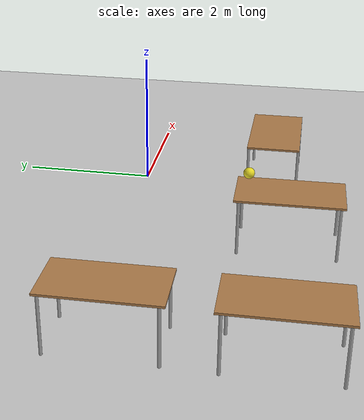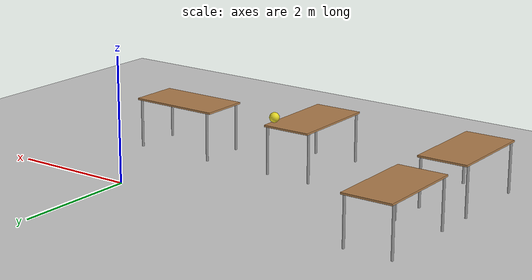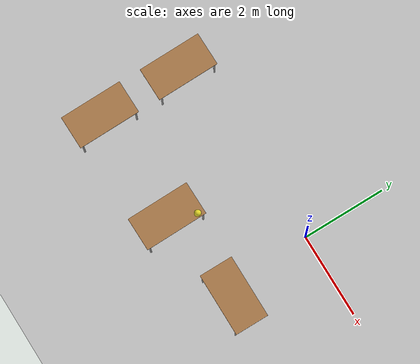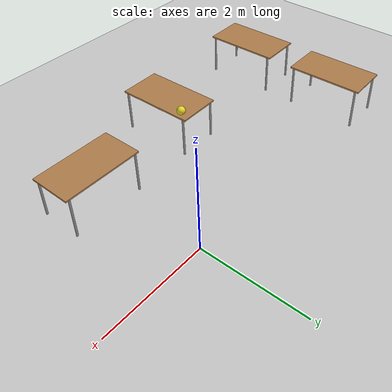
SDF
<sdf version="1.7">
 <world name="default">
  <model name="ground_plane">
   <static>1</static>
   <link name="link">
    <collision name="collision">
     <geometry><plane><normal>0 0 1</normal><size>100 100</size></plane></geometry>
     <surface>
      <contact><collide_bitmask>65535</collide_bitmask></contact>
      <friction><ode><mu>100</mu><mu2>50</mu2></ode></friction>
     </surface>
    </collision>
    <visual name="visual">
     <cast_shadows>0</cast_shadows>
     <geometry><plane><normal>0 0 1</normal><size>100 100</size></plane></geometry>
     <material>
      <script><uri>file://media/materials/scripts/gazebo.material</uri><name>Gazebo/Grey</name></script>
     </material>
    </visual>
   </link>
  </model>
  <model name="table_clone_clone_4">
   <link name="link">
    <inertial>
     <mass>1</mass>
     <pose>1.2 0 0.8 0 -0 0</pose>
     <inertia><ixx>1</ixx><ixy>0</ixy><ixz>0</ixz><iyy>1</iyy><iyz>0</iyz><izz>1</izz></inertia>
    </inertial>
    <visual name="back_right_leg">
     <pose>-0.68 -0.38 0.4 0 -0 0</pose>
     <geometry><cylinder><radius>0.02</radius><length>0.8</length></cylinder></geometry>
     <material>
      <script><uri>file://media/materials/scripts/gazebo.material</uri><name>Gazebo/Grey</name></script>
      <shader type="pixel"><normal_map>__default__</normal_map></shader>
      <ambient>0.3 0.3 0.3 1</ambient>
      <diffuse>0.7 0.7 0.7 1</diffuse>
      <specular>0.01 0.01 0.01 1</specular>
      <emissive>0 0 0 1</emissive>
     </material>
    </visual>
    <visual name="front_right_leg">
     <pose>0.68 -0.38 0.4 0 -0 0</pose>
     <geometry><cylinder><radius>0.02</radius><length>0.8</length></cylinder></geometry>
     <material>
      <script><uri>file://media/materials/scripts/gazebo.material</uri><name>Gazebo/Grey</name></script>
      <shader type="pixel"><normal_map>__default__</normal_map></shader>
      <ambient>0.3 0.3 0.3 1</ambient>
      <diffuse>0.7 0.7 0.7 1</diffuse>
      <specular>0.01 0.01 0.01 1</specular>
      <emissive>0 0 0 1</emissive>
     </material>
    </visual>
    <visual name="visual1">
     <pose>0 0 0.8 0 -0 0</pose>
     <geometry><box><size>1.5 0.8 0.03</size></box></geometry>
     <material>
      <script><uri>file://media/materials/scripts/gazebo.material</uri><name>Gazebo/Wood</name></script>
      <shader type="pixel"><normal_map>__default__</normal_map></shader>
      <ambient>1 1 1 1</ambient>
      <diffuse>1 1 1 1</diffuse>
      <specular>0.2 0.2 0.2 1</specular>
      <emissive>0 0 0 1</emissive>
     </material>
    </visual>
    <visual name="front_left_leg">
     <pose>0.68 0.38 0.4 0 -0 0</pose>
     <geometry><cylinder><radius>0.02</radius><length>0.8</length></cylinder></geometry>
     <material>
      <script><uri>file://media/materials/scripts/gazebo.material</uri><name>Gazebo/Grey</name></script>
      <shader type="pixel"><normal_map>__default__</normal_map></shader>
      <ambient>0.3 0.3 0.3 1</ambient>
      <diffuse>0.7 0.7 0.7 1</diffuse>
      <specular>0.01 0.01 0.01 1</specular>
      <emissive>0 0 0 1</emissive>
     </material>
    </visual>
    <visual name="back_left_leg">
     <pose>-0.68 0.38 0.4 0 -0 0</pose>
     <geometry><cylinder><radius>0.02</radius><length>0.8</length></cylinder></geometry>
     <material>
      <script><uri>file://media/materials/scripts/gazebo.material</uri><name>Gazebo/Grey</name></script>
      <shader type="pixel"><normal_map>__default__</normal_map></shader>
      <ambient>0.3 0.3 0.3 1</ambient>
      <diffuse>0.7 0.7 0.7 1</diffuse>
      <specular>0.01 0.01 0.01 1</specular>
      <emissive>0 0 0 1</emissive>
     </material>
    </visual>
    <collision name="back_right_leg">
     <pose>-0.68 -0.38 0.4 0 -0 0</pose>
     <geometry><cylinder><radius>0.02</radius><length>0.8</length></cylinder></geometry>
     <surface>
      <friction>
       <ode><mu>1</mu><mu2>1</mu2><fdir1>0 0 0</fdir1><slip1>0</slip1><slip2>0</slip2></ode>
       <torsional>
        <coefficient>1</coefficient>
        <patch_radius>0</patch_radius>
        <surface_radius>0</surface_radius>
        <use_patch_radius>1</use_patch_radius>
        <ode><slip>0</slip></ode>
       </torsional>
      </friction>
      <bounce><restitution_coefficient>0</restitution_coefficient><threshold>1e+06</threshold></bounce>
      <contact>
       <collide_without_contact>0</collide_without_contact>
       <collide_without_contact_bitmask>1</collide_without_contact_bitmask>
       <collide_bitmask>1</collide_bitmask>
       <ode>
        <soft_cfm>0</soft_cfm>
        <soft_erp>0.2</soft_erp>
        <kp>1e+13</kp>
        <kd>1</kd>
        <max_vel>0.01</max_vel>
        <min_depth>0</min_depth>
       </ode>
       <bullet>
        <split_impulse>1</split_impulse>
        <split_impulse_penetration_threshold>-0.01</split_impulse_penetration_threshold>
        <soft_cfm>0</soft_cfm>
        <soft_erp>0.2</soft_erp>
        <kp>1e+13</kp>
        <kd>1</kd>
       </bullet>
      </contact>
     </surface>
    </collision>
    <collision name="front_left_leg">
     <pose>0.68 0.38 0.4 0 -0 0</pose>
     <geometry><cylinder><radius>0.02</radius><length>0.8</length></cylinder></geometry>
     <surface>
      <friction>
       <ode><mu>1</mu><mu2>1</mu2><fdir1>0 0 0</fdir1><slip1>0</slip1><slip2>0</slip2></ode>
       <torsional>
        <coefficient>1</coefficient>
        <patch_radius>0</patch_radius>
        <surface_radius>0</surface_radius>
        <use_patch_radius>1</use_patch_radius>
        <ode><slip>0</slip></ode>
       </torsional>
      </friction>
      <bounce><restitution_coefficient>0</restitution_coefficient><threshold>1e+06</threshold></bounce>
      <contact>
       <collide_without_contact>0</collide_without_contact>
       <collide_without_contact_bitmask>1</collide_without_contact_bitmask>
       <collide_bitmask>1</collide_bitmask>
       <ode>
        <soft_cfm>0</soft_cfm>
        <soft_erp>0.2</soft_erp>
        <kp>1e+13</kp>
        <kd>1</kd>
        <max_vel>0.01</max_vel>
        <min_depth>0</min_depth>
       </ode>
       <bullet>
        <split_impulse>1</split_impulse>
        <split_impulse_penetration_threshold>-0.01</split_impulse_penetration_threshold>
        <soft_cfm>0</soft_cfm>
        <soft_erp>0.2</soft_erp>
        <kp>1e+13</kp>
        <kd>1</kd>
       </bullet>
      </contact>
     </surface>
    </collision>
    <collision name="back_left_leg">
     <pose>-0.68 0.38 0.4 0 -0 0</pose>
     <geometry><cylinder><radius>0.02</radius><length>0.8</length></cylinder></geometry>
     <surface>
      <friction>
       <ode><mu>1</mu><mu2>1</mu2><fdir1>0 0 0</fdir1><slip1>0</slip1><slip2>0</slip2></ode>
       <torsional>
        <coefficient>1</coefficient>
        <patch_radius>0</patch_radius>
        <surface_radius>0</surface_radius>
        <use_patch_radius>1</use_patch_radius>
        <ode><slip>0</slip></ode>
       </torsional>
      </friction>
      <bounce><restitution_coefficient>0</restitution_coefficient><threshold>1e+06</threshold></bounce>
      <contact>
       <collide_without_contact>0</collide_without_contact>
       <collide_without_contact_bitmask>1</collide_without_contact_bitmask>
       <collide_bitmask>1</collide_bitmask>
       <ode>
        <soft_cfm>0</soft_cfm>
        <soft_erp>0.2</soft_erp>
        <kp>1e+13</kp>
        <kd>1</kd>
        <max_vel>0.01</max_vel>
        <min_depth>0</min_depth>
       </ode>
       <bullet>
        <split_impulse>1</split_impulse>
        <split_impulse_penetration_threshold>-0.01</split_impulse_penetration_threshold>
        <soft_cfm>0</soft_cfm>
        <soft_erp>0.2</soft_erp>
        <kp>1e+13</kp>
        <kd>1</kd>
       </bullet>
      </contact>
     </surface>
    </collision>
    <collision name="surface">
     <pose>0 0 0.8 0 -0 0</pose>
     <geometry><box><size>1.5 0.8 0.03</size></box></geometry>
     <surface>
      <friction>
       <ode><mu>0.6</mu><mu2>0.6</mu2><fdir1>0 0 0</fdir1><slip1>0</slip1><slip2>0</slip2></ode>
       <torsional>
        <coefficient>1</coefficient>
        <patch_radius>0</patch_radius>
        <surface_radius>0</surface_radius>
        <use_patch_radius>1</use_patch_radius>
        <ode><slip>0</slip></ode>
       </torsional>
      </friction>
      <bounce><restitution_coefficient>0</restitution_coefficient><threshold>1e+06</threshold></bounce>
      <contact>
       <collide_without_contact>0</collide_without_contact>
       <collide_without_contact_bitmask>1</collide_without_contact_bitmask>
       <collide_bitmask>1</collide_bitmask>
       <ode>
        <soft_cfm>0</soft_cfm>
        <soft_erp>0.2</soft_erp>
        <kp>1e+13</kp>
        <kd>1</kd>
        <max_vel>0.01</max_vel>
        <min_depth>0</min_depth>
       </ode>
       <bullet>
        <split_impulse>1</split_impulse>
        <split_impulse_penetration_threshold>-0.01</split_impulse_penetration_threshold>
        <soft_cfm>0</soft_cfm>
        <soft_erp>0.2</soft_erp>
        <kp>1e+13</kp>
        <kd>1</kd>
       </bullet>
      </contact>
     </surface>
    </collision>
    <collision name="front_right_leg">
     <pose>0.68 -0.38 0.4 0 -0 0</pose>
     <geometry><cylinder><radius>0.02</radius><length>0.8</length></cylinder></geometry>
     <surface>
      <friction>
       <ode><mu>1</mu><mu2>1</mu2><fdir1>0 0 0</fdir1><slip1>0</slip1><slip2>0</slip2></ode>
       <torsional>
        <coefficient>1</coefficient>
        <patch_radius>0</patch_radius>
        <surface_radius>0</surface_radius>
        <use_patch_radius>1</use_patch_radius>
        <ode><slip>0</slip></ode>
       </torsional>
      </friction>
      <bounce><restitution_coefficient>0</restitution_coefficient><threshold>1e+06</threshold></bounce>
      <contact>
       <collide_without_contact>0</collide_without_contact>
       <collide_without_contact_bitmask>1</collide_without_contact_bitmask>
       <collide_bitmask>1</collide_bitmask>
       <ode>
        <soft_cfm>0</soft_cfm>
        <soft_erp>0.2</soft_erp>
        <kp>1e+13</kp>
        <kd>1</kd>
        <max_vel>0.01</max_vel>
        <min_depth>0</min_depth>
       </ode>
       <bullet>
        <split_impulse>1</split_impulse>
        <split_impulse_penetration_threshold>-0.01</split_impulse_penetration_threshold>
        <soft_cfm>0</soft_cfm>
        <soft_erp>0.2</soft_erp>
        <kp>1e+13</kp>
        <kd>1</kd>
       </bullet>
      </contact>
     </surface>
    </collision>
   </link>
   <static>1</static>
   <pose>-1.89491 -2.38472 0 0 0 -1.55553</pose>
  </model>
  <model name="table_clone_clone_5">
   <link name="link">
    <inertial>
     <mass>1</mass>
     <pose>1.2 0 0.8 0 -0 0</pose>
     <inertia><ixx>1</ixx><ixy>0</ixy><ixz>0</ixz><iyy>1</iyy><iyz>0</iyz><izz>1</izz></inertia>
    </inertial>
    <visual name="back_right_leg">
     <pose>-0.68 -0.38 0.4 0 -0 0</pose>
     <geometry><cylinder><radius>0.02</radius><length>0.8</length></cylinder></geometry>
     <material>
      <script><uri>file://media/materials/scripts/gazebo.material</uri><name>Gazebo/Grey</name></script>
      <shader type="pixel"><normal_map>__default__</normal_map></shader>
      <ambient>0.3 0.3 0.3 1</ambient>
      <diffuse>0.7 0.7 0.7 1</diffuse>
      <specular>0.01 0.01 0.01 1</specular>
      <emissive>0 0 0 1</emissive>
     </material>
    </visual>
    <visual name="front_right_leg">
     <pose>0.68 -0.38 0.4 0 -0 0</pose>
     <geometry><cylinder><radius>0.02</radius><length>0.8</length></cylinder></geometry>
     <material>
      <script><uri>file://media/materials/scripts/gazebo.material</uri><name>Gazebo/Grey</name></script>
      <shader type="pixel"><normal_map>__default__</normal_map></shader>
      <ambient>0.3 0.3 0.3 1</ambient>
      <diffuse>0.7 0.7 0.7 1</diffuse>
      <specular>0.01 0.01 0.01 1</specular>
      <emissive>0 0 0 1</emissive>
     </material>
    </visual>
    <visual name="visual1">
     <pose>0 0 0.8 0 -0 0</pose>
     <geometry><box><size>1.5 0.8 0.03</size></box></geometry>
     <material>
      <script><uri>file://media/materials/scripts/gazebo.material</uri><name>Gazebo/Wood</name></script>
      <shader type="pixel"><normal_map>__default__</normal_map></shader>
      <ambient>1 1 1 1</ambient>
      <diffuse>1 1 1 1</diffuse>
      <specular>0.2 0.2 0.2 1</specular>
      <emissive>0 0 0 1</emissive>
     </material>
    </visual>
    <visual name="front_left_leg">
     <pose>0.68 0.38 0.4 0 -0 0</pose>
     <geometry><cylinder><radius>0.02</radius><length>0.8</length></cylinder></geometry>
     <material>
      <script><uri>file://media/materials/scripts/gazebo.material</uri><name>Gazebo/Grey</name></script>
      <shader type="pixel"><normal_map>__default__</normal_map></shader>
      <ambient>0.3 0.3 0.3 1</ambient>
      <diffuse>0.7 0.7 0.7 1</diffuse>
      <specular>0.01 0.01 0.01 1</specular>
      <emissive>0 0 0 1</emissive>
     </material>
    </visual>
    <visual name="back_left_leg">
     <pose>-0.68 0.38 0.4 0 -0 0</pose>
     <geometry><cylinder><radius>0.02</radius><length>0.8</length></cylinder></geometry>
     <material>
      <script><uri>file://media/materials/scripts/gazebo.material</uri><name>Gazebo/Grey</name></script>
      <shader type="pixel"><normal_map>__default__</normal_map></shader>
      <ambient>0.3 0.3 0.3 1</ambient>
      <diffuse>0.7 0.7 0.7 1</diffuse>
      <specular>0.01 0.01 0.01 1</specular>
      <emissive>0 0 0 1</emissive>
     </material>
    </visual>
    <collision name="back_right_leg">
     <pose>-0.68 -0.38 0.4 0 -0 0</pose>
     <geometry><cylinder><radius>0.02</radius><length>0.8</length></cylinder></geometry>
     <surface>
      <friction>
       <ode><mu>1</mu><mu2>1</mu2><fdir1>0 0 0</fdir1><slip1>0</slip1><slip2>0</slip2></ode>
       <torsional>
        <coefficient>1</coefficient>
        <patch_radius>0</patch_radius>
        <surface_radius>0</surface_radius>
        <use_patch_radius>1</use_patch_radius>
        <ode><slip>0</slip></ode>
       </torsional>
      </friction>
      <bounce><restitution_coefficient>0</restitution_coefficient><threshold>1e+06</threshold></bounce>
      <contact>
       <collide_without_contact>0</collide_without_contact>
       <collide_without_contact_bitmask>1</collide_without_contact_bitmask>
       <collide_bitmask>1</collide_bitmask>
       <ode>
        <soft_cfm>0</soft_cfm>
        <soft_erp>0.2</soft_erp>
        <kp>1e+13</kp>
        <kd>1</kd>
        <max_vel>0.01</max_vel>
        <min_depth>0</min_depth>
       </ode>
       <bullet>
        <split_impulse>1</split_impulse>
        <split_impulse_penetration_threshold>-0.01</split_impulse_penetration_threshold>
        <soft_cfm>0</soft_cfm>
        <soft_erp>0.2</soft_erp>
        <kp>1e+13</kp>
        <kd>1</kd>
       </bullet>
      </contact>
     </surface>
    </collision>
    <collision name="front_left_leg">
     <pose>0.68 0.38 0.4 0 -0 0</pose>
     <geometry><cylinder><radius>0.02</radius><length>0.8</length></cylinder></geometry>
     <surface>
      <friction>
       <ode><mu>1</mu><mu2>1</mu2><fdir1>0 0 0</fdir1><slip1>0</slip1><slip2>0</slip2></ode>
       <torsional>
        <coefficient>1</coefficient>
        <patch_radius>0</patch_radius>
        <surface_radius>0</surface_radius>
        <use_patch_radius>1</use_patch_radius>
        <ode><slip>0</slip></ode>
       </torsional>
      </friction>
      <bounce><restitution_coefficient>0</restitution_coefficient><threshold>1e+06</threshold></bounce>
      <contact>
       <collide_without_contact>0</collide_without_contact>
       <collide_without_contact_bitmask>1</collide_without_contact_bitmask>
       <collide_bitmask>1</collide_bitmask>
       <ode>
        <soft_cfm>0</soft_cfm>
        <soft_erp>0.2</soft_erp>
        <kp>1e+13</kp>
        <kd>1</kd>
        <max_vel>0.01</max_vel>
        <min_depth>0</min_depth>
       </ode>
       <bullet>
        <split_impulse>1</split_impulse>
        <split_impulse_penetration_threshold>-0.01</split_impulse_penetration_threshold>
        <soft_cfm>0</soft_cfm>
        <soft_erp>0.2</soft_erp>
        <kp>1e+13</kp>
        <kd>1</kd>
       </bullet>
      </contact>
     </surface>
    </collision>
    <collision name="back_left_leg">
     <pose>-0.68 0.38 0.4 0 -0 0</pose>
     <geometry><cylinder><radius>0.02</radius><length>0.8</length></cylinder></geometry>
     <surface>
      <friction>
       <ode><mu>1</mu><mu2>1</mu2><fdir1>0 0 0</fdir1><slip1>0</slip1><slip2>0</slip2></ode>
       <torsional>
        <coefficient>1</coefficient>
        <patch_radius>0</patch_radius>
        <surface_radius>0</surface_radius>
        <use_patch_radius>1</use_patch_radius>
        <ode><slip>0</slip></ode>
       </torsional>
      </friction>
      <bounce><restitution_coefficient>0</restitution_coefficient><threshold>1e+06</threshold></bounce>
      <contact>
       <collide_without_contact>0</collide_without_contact>
       <collide_without_contact_bitmask>1</collide_without_contact_bitmask>
       <collide_bitmask>1</collide_bitmask>
       <ode>
        <soft_cfm>0</soft_cfm>
        <soft_erp>0.2</soft_erp>
        <kp>1e+13</kp>
        <kd>1</kd>
        <max_vel>0.01</max_vel>
        <min_depth>0</min_depth>
       </ode>
       <bullet>
        <split_impulse>1</split_impulse>
        <split_impulse_penetration_threshold>-0.01</split_impulse_penetration_threshold>
        <soft_cfm>0</soft_cfm>
        <soft_erp>0.2</soft_erp>
        <kp>1e+13</kp>
        <kd>1</kd>
       </bullet>
      </contact>
     </surface>
    </collision>
    <collision name="surface">
     <pose>0 0 0.8 0 -0 0</pose>
     <geometry><box><size>1.5 0.8 0.03</size></box></geometry>
     <surface>
      <friction>
       <ode><mu>0.6</mu><mu2>0.6</mu2><fdir1>0 0 0</fdir1><slip1>0</slip1><slip2>0</slip2></ode>
       <torsional>
        <coefficient>1</coefficient>
        <patch_radius>0</patch_radius>
        <surface_radius>0</surface_radius>
        <use_patch_radius>1</use_patch_radius>
        <ode><slip>0</slip></ode>
       </torsional>
      </friction>
      <bounce><restitution_coefficient>0</restitution_coefficient><threshold>1e+06</threshold></bounce>
      <contact>
       <collide_without_contact>0</collide_without_contact>
       <collide_without_contact_bitmask>1</collide_without_contact_bitmask>
       <collide_bitmask>1</collide_bitmask>
       <ode>
        <soft_cfm>0</soft_cfm>
        <soft_erp>0.2</soft_erp>
        <kp>1e+13</kp>
        <kd>1</kd>
        <max_vel>0.01</max_vel>
        <min_depth>0</min_depth>
       </ode>
       <bullet>
        <split_impulse>1</split_impulse>
        <split_impulse_penetration_threshold>-0.01</split_impulse_penetration_threshold>
        <soft_cfm>0</soft_cfm>
        <soft_erp>0.2</soft_erp>
        <kp>1e+13</kp>
        <kd>1</kd>
       </bullet>
      </contact>
     </surface>
    </collision>
    <collision name="front_right_leg">
     <pose>0.68 -0.38 0.4 0 -0 0</pose>
     <geometry><cylinder><radius>0.02</radius><length>0.8</length></cylinder></geometry>
     <surface>
      <friction>
       <ode><mu>1</mu><mu2>1</mu2><fdir1>0 0 0</fdir1><slip1>0</slip1><slip2>0</slip2></ode>
       <torsional>
        <coefficient>1</coefficient>
        <patch_radius>0</patch_radius>
        <surface_radius>0</surface_radius>
        <use_patch_radius>1</use_patch_radius>
        <ode><slip>0</slip></ode>
       </torsional>
      </friction>
      <bounce><restitution_coefficient>0</restitution_coefficient><threshold>1e+06</threshold></bounce>
      <contact>
       <collide_without_contact>0</collide_without_contact>
       <collide_without_contact_bitmask>1</collide_without_contact_bitmask>
       <collide_bitmask>1</collide_bitmask>
       <ode>
        <soft_cfm>0</soft_cfm>
        <soft_erp>0.2</soft_erp>
        <kp>1e+13</kp>
        <kd>1</kd>
        <max_vel>0.01</max_vel>
        <min_depth>0</min_depth>
       </ode>
       <bullet>
        <split_impulse>1</split_impulse>
        <split_impulse_penetration_threshold>-0.01</split_impulse_penetration_threshold>
        <soft_cfm>0</soft_cfm>
        <soft_erp>0.2</soft_erp>
        <kp>1e+13</kp>
        <kd>1</kd>
       </bullet>
      </contact>
     </surface>
    </collision>
   </link>
   <static>1</static>
   <pose>-4.56976 -2.4658 0 0 0 -1.55553</pose>
  </model>
  <model name="table_clone_clone_6">
   <link name="link">
    <inertial>
     <mass>1</mass>
     <pose>1.2 0 0.8 0 -0 0</pose>
     <inertia><ixx>1</ixx><ixy>0</ixy><ixz>0</ixz><iyy>1</iyy><iyz>0</iyz><izz>1</izz></inertia>
    </inertial>
    <visual name="back_right_leg">
     <pose>-0.68 -0.38 0.4 0 -0 0</pose>
     <geometry><cylinder><radius>0.02</radius><length>0.8</length></cylinder></geometry>
     <material>
      <script><uri>file://media/materials/scripts/gazebo.material</uri><name>Gazebo/Grey</name></script>
      <shader type="pixel"><normal_map>__default__</normal_map></shader>
      <ambient>0.3 0.3 0.3 1</ambient>
      <diffuse>0.7 0.7 0.7 1</diffuse>
      <specular>0.01 0.01 0.01 1</specular>
      <emissive>0 0 0 1</emissive>
     </material>
    </visual>
    <visual name="front_right_leg">
     <pose>0.68 -0.38 0.4 0 -0 0</pose>
     <geometry><cylinder><radius>0.02</radius><length>0.8</length></cylinder></geometry>
     <material>
      <script><uri>file://media/materials/scripts/gazebo.material</uri><name>Gazebo/Grey</name></script>
      <shader type="pixel"><normal_map>__default__</normal_map></shader>
      <ambient>0.3 0.3 0.3 1</ambient>
      <diffuse>0.7 0.7 0.7 1</diffuse>
      <specular>0.01 0.01 0.01 1</specular>
      <emissive>0 0 0 1</emissive>
     </material>
    </visual>
    <visual name="visual1">
     <pose>0 0 0.8 0 -0 0</pose>
     <geometry><box><size>1.5 0.8 0.03</size></box></geometry>
     <material>
      <script><uri>file://media/materials/scripts/gazebo.material</uri><name>Gazebo/Wood</name></script>
      <shader type="pixel"><normal_map>__default__</normal_map></shader>
      <ambient>1 1 1 1</ambient>
      <diffuse>1 1 1 1</diffuse>
      <specular>0.2 0.2 0.2 1</specular>
      <emissive>0 0 0 1</emissive>
     </material>
    </visual>
    <visual name="front_left_leg">
     <pose>0.68 0.38 0.4 0 -0 0</pose>
     <geometry><cylinder><radius>0.02</radius><length>0.8</length></cylinder></geometry>
     <material>
      <script><uri>file://media/materials/scripts/gazebo.material</uri><name>Gazebo/Grey</name></script>
      <shader type="pixel"><normal_map>__default__</normal_map></shader>
      <ambient>0.3 0.3 0.3 1</ambient>
      <diffuse>0.7 0.7 0.7 1</diffuse>
      <specular>0.01 0.01 0.01 1</specular>
      <emissive>0 0 0 1</emissive>
     </material>
    </visual>
    <visual name="back_left_leg">
     <pose>-0.68 0.38 0.4 0 -0 0</pose>
     <geometry><cylinder><radius>0.02</radius><length>0.8</length></cylinder></geometry>
     <material>
      <script><uri>file://media/materials/scripts/gazebo.material</uri><name>Gazebo/Grey</name></script>
      <shader type="pixel"><normal_map>__default__</normal_map></shader>
      <ambient>0.3 0.3 0.3 1</ambient>
      <diffuse>0.7 0.7 0.7 1</diffuse>
      <specular>0.01 0.01 0.01 1</specular>
      <emissive>0 0 0 1</emissive>
     </material>
    </visual>
    <collision name="back_right_leg">
     <pose>-0.68 -0.38 0.4 0 -0 0</pose>
     <geometry><cylinder><radius>0.02</radius><length>0.8</length></cylinder></geometry>
     <surface>
      <friction>
       <ode><mu>1</mu><mu2>1</mu2><fdir1>0 0 0</fdir1><slip1>0</slip1><slip2>0</slip2></ode>
       <torsional>
        <coefficient>1</coefficient>
        <patch_radius>0</patch_radius>
        <surface_radius>0</surface_radius>
        <use_patch_radius>1</use_patch_radius>
        <ode><slip>0</slip></ode>
       </torsional>
      </friction>
      <bounce><restitution_coefficient>0</restitution_coefficient><threshold>1e+06</threshold></bounce>
      <contact>
       <collide_without_contact>0</collide_without_contact>
       <collide_without_contact_bitmask>1</collide_without_contact_bitmask>
       <collide_bitmask>1</collide_bitmask>
       <ode>
        <soft_cfm>0</soft_cfm>
        <soft_erp>0.2</soft_erp>
        <kp>1e+13</kp>
        <kd>1</kd>
        <max_vel>0.01</max_vel>
        <min_depth>0</min_depth>
       </ode>
       <bullet>
        <split_impulse>1</split_impulse>
        <split_impulse_penetration_threshold>-0.01</split_impulse_penetration_threshold>
        <soft_cfm>0</soft_cfm>
        <soft_erp>0.2</soft_erp>
        <kp>1e+13</kp>
        <kd>1</kd>
       </bullet>
      </contact>
     </surface>
    </collision>
    <collision name="front_left_leg">
     <pose>0.68 0.38 0.4 0 -0 0</pose>
     <geometry><cylinder><radius>0.02</radius><length>0.8</length></cylinder></geometry>
     <surface>
      <friction>
       <ode><mu>1</mu><mu2>1</mu2><fdir1>0 0 0</fdir1><slip1>0</slip1><slip2>0</slip2></ode>
       <torsional>
        <coefficient>1</coefficient>
        <patch_radius>0</patch_radius>
        <surface_radius>0</surface_radius>
        <use_patch_radius>1</use_patch_radius>
        <ode><slip>0</slip></ode>
       </torsional>
      </friction>
      <bounce><restitution_coefficient>0</restitution_coefficient><threshold>1e+06</threshold></bounce>
      <contact>
       <collide_without_contact>0</collide_without_contact>
       <collide_without_contact_bitmask>1</collide_without_contact_bitmask>
       <collide_bitmask>1</collide_bitmask>
       <ode>
        <soft_cfm>0</soft_cfm>
        <soft_erp>0.2</soft_erp>
        <kp>1e+13</kp>
        <kd>1</kd>
        <max_vel>0.01</max_vel>
        <min_depth>0</min_depth>
       </ode>
       <bullet>
        <split_impulse>1</split_impulse>
        <split_impulse_penetration_threshold>-0.01</split_impulse_penetration_threshold>
        <soft_cfm>0</soft_cfm>
        <soft_erp>0.2</soft_erp>
        <kp>1e+13</kp>
        <kd>1</kd>
       </bullet>
      </contact>
     </surface>
    </collision>
    <collision name="back_left_leg">
     <pose>-0.68 0.38 0.4 0 -0 0</pose>
     <geometry><cylinder><radius>0.02</radius><length>0.8</length></cylinder></geometry>
     <surface>
      <friction>
       <ode><mu>1</mu><mu2>1</mu2><fdir1>0 0 0</fdir1><slip1>0</slip1><slip2>0</slip2></ode>
       <torsional>
        <coefficient>1</coefficient>
        <patch_radius>0</patch_radius>
        <surface_radius>0</surface_radius>
        <use_patch_radius>1</use_patch_radius>
        <ode><slip>0</slip></ode>
       </torsional>
      </friction>
      <bounce><restitution_coefficient>0</restitution_coefficient><threshold>1e+06</threshold></bounce>
      <contact>
       <collide_without_contact>0</collide_without_contact>
       <collide_without_contact_bitmask>1</collide_without_contact_bitmask>
       <collide_bitmask>1</collide_bitmask>
       <ode>
        <soft_cfm>0</soft_cfm>
        <soft_erp>0.2</soft_erp>
        <kp>1e+13</kp>
        <kd>1</kd>
        <max_vel>0.01</max_vel>
        <min_depth>0</min_depth>
       </ode>
       <bullet>
        <split_impulse>1</split_impulse>
        <split_impulse_penetration_threshold>-0.01</split_impulse_penetration_threshold>
        <soft_cfm>0</soft_cfm>
        <soft_erp>0.2</soft_erp>
        <kp>1e+13</kp>
        <kd>1</kd>
       </bullet>
      </contact>
     </surface>
    </collision>
    <collision name="surface">
     <pose>0 0 0.8 0 -0 0</pose>
     <geometry><box><size>1.5 0.8 0.03</size></box></geometry>
     <surface>
      <friction>
       <ode><mu>0.6</mu><mu2>0.6</mu2><fdir1>0 0 0</fdir1><slip1>0</slip1><slip2>0</slip2></ode>
       <torsional>
        <coefficient>1</coefficient>
        <patch_radius>0</patch_radius>
        <surface_radius>0</surface_radius>
        <use_patch_radius>1</use_patch_radius>
        <ode><slip>0</slip></ode>
       </torsional>
      </friction>
      <bounce><restitution_coefficient>0</restitution_coefficient><threshold>1e+06</threshold></bounce>
      <contact>
       <collide_without_contact>0</collide_without_contact>
       <collide_without_contact_bitmask>1</collide_without_contact_bitmask>
       <collide_bitmask>1</collide_bitmask>
       <ode>
        <soft_cfm>0</soft_cfm>
        <soft_erp>0.2</soft_erp>
        <kp>1e+13</kp>
        <kd>1</kd>
        <max_vel>0.01</max_vel>
        <min_depth>0</min_depth>
       </ode>
       <bullet>
        <split_impulse>1</split_impulse>
        <split_impulse_penetration_threshold>-0.01</split_impulse_penetration_threshold>
        <soft_cfm>0</soft_cfm>
        <soft_erp>0.2</soft_erp>
        <kp>1e+13</kp>
        <kd>1</kd>
       </bullet>
      </contact>
     </surface>
    </collision>
    <collision name="front_right_leg">
     <pose>0.68 -0.38 0.4 0 -0 0</pose>
     <geometry><cylinder><radius>0.02</radius><length>0.8</length></cylinder></geometry>
     <surface>
      <friction>
       <ode><mu>1</mu><mu2>1</mu2><fdir1>0 0 0</fdir1><slip1>0</slip1><slip2>0</slip2></ode>
       <torsional>
        <coefficient>1</coefficient>
        <patch_radius>0</patch_radius>
        <surface_radius>0</surface_radius>
        <use_patch_radius>1</use_patch_radius>
        <ode><slip>0</slip></ode>
       </torsional>
      </friction>
      <bounce><restitution_coefficient>0</restitution_coefficient><threshold>1e+06</threshold></bounce>
      <contact>
       <collide_without_contact>0</collide_without_contact>
       <collide_without_contact_bitmask>1</collide_without_contact_bitmask>
       <collide_bitmask>1</collide_bitmask>
       <ode>
        <soft_cfm>0</soft_cfm>
        <soft_erp>0.2</soft_erp>
        <kp>1e+13</kp>
        <kd>1</kd>
        <max_vel>0.01</max_vel>
        <min_depth>0</min_depth>
       </ode>
       <bullet>
        <split_impulse>1</split_impulse>
        <split_impulse_penetration_threshold>-0.01</split_impulse_penetration_threshold>
        <soft_cfm>0</soft_cfm>
        <soft_erp>0.2</soft_erp>
        <kp>1e+13</kp>
        <kd>1</kd>
       </bullet>
      </contact>
     </surface>
    </collision>
   </link>
   <static>1</static>
   <pose>-4.58076 -0.445463 0 0 0 -1.55553</pose>
  </model>
  <model name="table_clone_1">
   <link name="link">
    <inertial>
     <mass>1</mass>
     <pose>1.2 0 0.8 0 -0 0</pose>
     <inertia><ixx>1</ixx><ixy>0</ixy><ixz>0</ixz><iyy>1</iyy><iyz>0</iyz><izz>1</izz></inertia>
    </inertial>
    <visual name="back_right_leg">
     <pose>-0.68 -0.38 0.4 0 -0 0</pose>
     <geometry><cylinder><radius>0.02</radius><length>0.8</length></cylinder></geometry>
     <material>
      <script><uri>file://media/materials/scripts/gazebo.material</uri><name>Gazebo/Grey</name></script>
      <shader type="pixel"><normal_map>__default__</normal_map></shader>
      <ambient>0.3 0.3 0.3 1</ambient>
      <diffuse>0.7 0.7 0.7 1</diffuse>
      <specular>0.01 0.01 0.01 1</specular>
      <emissive>0 0 0 1</emissive>
     </material>
    </visual>
    <visual name="front_right_leg">
     <pose>0.68 -0.38 0.4 0 -0 0</pose>
     <geometry><cylinder><radius>0.02</radius><length>0.8</length></cylinder></geometry>
     <material>
      <script><uri>file://media/materials/scripts/gazebo.material</uri><name>Gazebo/Grey</name></script>
      <shader type="pixel"><normal_map>__default__</normal_map></shader>
      <ambient>0.3 0.3 0.3 1</ambient>
      <diffuse>0.7 0.7 0.7 1</diffuse>
      <specular>0.01 0.01 0.01 1</specular>
      <emissive>0 0 0 1</emissive>
     </material>
    </visual>
    <visual name="visual1">
     <pose>0 0 0.8 0 -0 0</pose>
     <geometry><box><size>1.5 0.8 0.03</size></box></geometry>
     <material>
      <script><uri>file://media/materials/scripts/gazebo.material</uri><name>Gazebo/Wood</name></script>
      <shader type="pixel"><normal_map>__default__</normal_map></shader>
      <ambient>1 1 1 1</ambient>
      <diffuse>1 1 1 1</diffuse>
      <specular>0.2 0.2 0.2 1</specular>
      <emissive>0 0 0 1</emissive>
     </material>
    </visual>
    <visual name="front_left_leg">
     <pose>0.68 0.38 0.4 0 -0 0</pose>
     <geometry><cylinder><radius>0.02</radius><length>0.8</length></cylinder></geometry>
     <material>
      <script><uri>file://media/materials/scripts/gazebo.material</uri><name>Gazebo/Grey</name></script>
      <shader type="pixel"><normal_map>__default__</normal_map></shader>
      <ambient>0.3 0.3 0.3 1</ambient>
      <diffuse>0.7 0.7 0.7 1</diffuse>
      <specular>0.01 0.01 0.01 1</specular>
      <emissive>0 0 0 1</emissive>
     </material>
    </visual>
    <visual name="back_left_leg">
     <pose>-0.68 0.38 0.4 0 -0 0</pose>
     <geometry><cylinder><radius>0.02</radius><length>0.8</length></cylinder></geometry>
     <material>
      <script><uri>file://media/materials/scripts/gazebo.material</uri><name>Gazebo/Grey</name></script>
      <shader type="pixel"><normal_map>__default__</normal_map></shader>
      <ambient>0.3 0.3 0.3 1</ambient>
      <diffuse>0.7 0.7 0.7 1</diffuse>
      <specular>0.01 0.01 0.01 1</specular>
      <emissive>0 0 0 1</emissive>
     </material>
    </visual>
    <collision name="back_right_leg">
     <pose>-0.68 -0.38 0.4 0 -0 0</pose>
     <geometry><cylinder><radius>0.02</radius><length>0.8</length></cylinder></geometry>
     <surface>
      <friction>
       <ode><mu>1</mu><mu2>1</mu2><fdir1>0 0 0</fdir1><slip1>0</slip1><slip2>0</slip2></ode>
       <torsional>
        <coefficient>1</coefficient>
        <patch_radius>0</patch_radius>
        <surface_radius>0</surface_radius>
        <use_patch_radius>1</use_patch_radius>
        <ode><slip>0</slip></ode>
       </torsional>
      </friction>
      <bounce><restitution_coefficient>0</restitution_coefficient><threshold>1e+06</threshold></bounce>
      <contact>
       <collide_without_contact>0</collide_without_contact>
       <collide_without_contact_bitmask>1</collide_without_contact_bitmask>
       <collide_bitmask>1</collide_bitmask>
       <ode>
        <soft_cfm>0</soft_cfm>
        <soft_erp>0.2</soft_erp>
        <kp>1e+13</kp>
        <kd>1</kd>
        <max_vel>0.01</max_vel>
        <min_depth>0</min_depth>
       </ode>
       <bullet>
        <split_impulse>1</split_impulse>
        <split_impulse_penetration_threshold>-0.01</split_impulse_penetration_threshold>
        <soft_cfm>0</soft_cfm>
        <soft_erp>0.2</soft_erp>
        <kp>1e+13</kp>
        <kd>1</kd>
       </bullet>
      </contact>
     </surface>
    </collision>
    <collision name="front_left_leg">
     <pose>0.68 0.38 0.4 0 -0 0</pose>
     <geometry><cylinder><radius>0.02</radius><length>0.8</length></cylinder></geometry>
     <surface>
      <friction>
       <ode><mu>1</mu><mu2>1</mu2><fdir1>0 0 0</fdir1><slip1>0</slip1><slip2>0</slip2></ode>
       <torsional>
        <coefficient>1</coefficient>
        <patch_radius>0</patch_radius>
        <surface_radius>0</surface_radius>
        <use_patch_radius>1</use_patch_radius>
        <ode><slip>0</slip></ode>
       </torsional>
      </friction>
      <bounce><restitution_coefficient>0</restitution_coefficient><threshold>1e+06</threshold></bounce>
      <contact>
       <collide_without_contact>0</collide_without_contact>
       <collide_without_contact_bitmask>1</collide_without_contact_bitmask>
       <collide_bitmask>1</collide_bitmask>
       <ode>
        <soft_cfm>0</soft_cfm>
        <soft_erp>0.2</soft_erp>
        <kp>1e+13</kp>
        <kd>1</kd>
        <max_vel>0.01</max_vel>
        <min_depth>0</min_depth>
       </ode>
       <bullet>
        <split_impulse>1</split_impulse>
        <split_impulse_penetration_threshold>-0.01</split_impulse_penetration_threshold>
        <soft_cfm>0</soft_cfm>
        <soft_erp>0.2</soft_erp>
        <kp>1e+13</kp>
        <kd>1</kd>
       </bullet>
      </contact>
     </surface>
    </collision>
    <collision name="back_left_leg">
     <pose>-0.68 0.38 0.4 0 -0 0</pose>
     <geometry><cylinder><radius>0.02</radius><length>0.8</length></cylinder></geometry>
     <surface>
      <friction>
       <ode><mu>1</mu><mu2>1</mu2><fdir1>0 0 0</fdir1><slip1>0</slip1><slip2>0</slip2></ode>
       <torsional>
        <coefficient>1</coefficient>
        <patch_radius>0</patch_radius>
        <surface_radius>0</surface_radius>
        <use_patch_radius>1</use_patch_radius>
        <ode><slip>0</slip></ode>
       </torsional>
      </friction>
      <bounce><restitution_coefficient>0</restitution_coefficient><threshold>1e+06</threshold></bounce>
      <contact>
       <collide_without_contact>0</collide_without_contact>
       <collide_without_contact_bitmask>1</collide_without_contact_bitmask>
       <collide_bitmask>1</collide_bitmask>
       <ode>
        <soft_cfm>0</soft_cfm>
        <soft_erp>0.2</soft_erp>
        <kp>1e+13</kp>
        <kd>1</kd>
        <max_vel>0.01</max_vel>
        <min_depth>0</min_depth>
       </ode>
       <bullet>
        <split_impulse>1</split_impulse>
        <split_impulse_penetration_threshold>-0.01</split_impulse_penetration_threshold>
        <soft_cfm>0</soft_cfm>
        <soft_erp>0.2</soft_erp>
        <kp>1e+13</kp>
        <kd>1</kd>
       </bullet>
      </contact>
     </surface>
    </collision>
    <collision name="surface">
     <pose>0 0 0.8 0 -0 0</pose>
     <geometry><box><size>1.5 0.8 0.03</size></box></geometry>
     <surface>
      <friction>
       <ode><mu>0.6</mu><mu2>0.6</mu2><fdir1>0 0 0</fdir1><slip1>0</slip1><slip2>0</slip2></ode>
       <torsional>
        <coefficient>1</coefficient>
        <patch_radius>0</patch_radius>
        <surface_radius>0</surface_radius>
        <use_patch_radius>1</use_patch_radius>
        <ode><slip>0</slip></ode>
       </torsional>
      </friction>
      <bounce><restitution_coefficient>0</restitution_coefficient><threshold>1e+06</threshold></bounce>
      <contact>
       <collide_without_contact>0</collide_without_contact>
       <collide_without_contact_bitmask>1</collide_without_contact_bitmask>
       <collide_bitmask>1</collide_bitmask>
       <ode>
        <soft_cfm>0</soft_cfm>
        <soft_erp>0.2</soft_erp>
        <kp>1e+13</kp>
        <kd>1</kd>
        <max_vel>0.01</max_vel>
        <min_depth>0</min_depth>
       </ode>
       <bullet>
        <split_impulse>1</split_impulse>
        <split_impulse_penetration_threshold>-0.01</split_impulse_penetration_threshold>
        <soft_cfm>0</soft_cfm>
        <soft_erp>0.2</soft_erp>
        <kp>1e+13</kp>
        <kd>1</kd>
       </bullet>
      </contact>
     </surface>
    </collision>
    <collision name="front_right_leg">
     <pose>0.68 -0.38 0.4 0 -0 0</pose>
     <geometry><cylinder><radius>0.02</radius><length>0.8</length></cylinder></geometry>
     <surface>
      <friction>
       <ode><mu>1</mu><mu2>1</mu2><fdir1>0 0 0</fdir1><slip1>0</slip1><slip2>0</slip2></ode>
       <torsional>
        <coefficient>1</coefficient>
        <patch_radius>0</patch_radius>
        <surface_radius>0</surface_radius>
        <use_patch_radius>1</use_patch_radius>
        <ode><slip>0</slip></ode>
       </torsional>
      </friction>
      <bounce><restitution_coefficient>0</restitution_coefficient><threshold>1e+06</threshold></bounce>
      <contact>
       <collide_without_contact>0</collide_without_contact>
       <collide_without_contact_bitmask>1</collide_without_contact_bitmask>
       <collide_bitmask>1</collide_bitmask>
       <ode>
        <soft_cfm>0</soft_cfm>
        <soft_erp>0.2</soft_erp>
        <kp>1e+13</kp>
        <kd>1</kd>
        <max_vel>0.01</max_vel>
        <min_depth>0</min_depth>
       </ode>
       <bullet>
        <split_impulse>1</split_impulse>
        <split_impulse_penetration_threshold>-0.01</split_impulse_penetration_threshold>
        <soft_cfm>0</soft_cfm>
        <soft_erp>0.2</soft_erp>
        <kp>1e+13</kp>
        <kd>1</kd>
       </bullet>
      </contact>
     </surface>
    </collision>
   </link>
   <static>1</static>
   <pose>0.340497 -2.05773 0 0 -0 0</pose>
  </model>
  <model name="indicar_final_clone">
   <link name="link">
    <inertial>
     <mass>1</mass>
     <inertia><ixx>0.1</ixx><ixy>0</ixy><ixz>0</ixz><iyy>0.1</iyy><iyz>0</iyz><izz>0.1</izz></inertia>
    </inertial>
    <visual name="visual">
     <geometry><sphere><radius>0.08</radius></sphere></geometry>
     <material>
      <script><name>Gazebo/Yellow</name><uri>file://media/materials/scripts/gazebo.material</uri></script>
      <shader type="pixel"><normal_map>__default__</normal_map></shader>
      <ambient>1 1 0 1</ambient>
      <diffuse>1 1 0 1</diffuse>
      <emissive>0 0 0 1</emissive>
     </material>
    </visual>
    <collision name="collision">
     <geometry><sphere><radius>0.08</radius></sphere></geometry>
     <surface>
      <friction>
       <ode><mu>1</mu><mu2>1</mu2><fdir1>0 0 0</fdir1><slip1>0</slip1><slip2>0</slip2></ode>
       <torsional>
        <coefficient>1</coefficient>
        <patch_radius>0</patch_radius>
        <surface_radius>0</surface_radius>
        <use_patch_radius>1</use_patch_radius>
        <ode><slip>0</slip></ode>
       </torsional>
      </friction>
      <bounce><restitution_coefficient>0</restitution_coefficient><threshold>1e+06</threshold></bounce>
      <contact>
       <collide_without_contact>0</collide_without_contact>
       <collide_without_contact_bitmask>1</collide_without_contact_bitmask>
       <collide_bitmask>1</collide_bitmask>
       <ode>
        <soft_cfm>0</soft_cfm>
        <soft_erp>0.2</soft_erp>
        <kp>1e+13</kp>
        <kd>1</kd>
        <max_vel>0.01</max_vel>
        <min_depth>0</min_depth>
       </ode>
       <bullet>
        <split_impulse>1</split_impulse>
        <split_impulse_penetration_threshold>-0.01</split_impulse_penetration_threshold>
        <soft_cfm>0</soft_cfm>
        <soft_erp>0.2</soft_erp>
        <kp>1e+13</kp>
        <kd>1</kd>
       </bullet>
      </contact>
     </surface>
    </collision>
   </link>
   <static>0</static>
   <pose>-1.58956 -1.78889 0.915 0 -0 0</pose>
  </model>
 </world>
</sdf>
